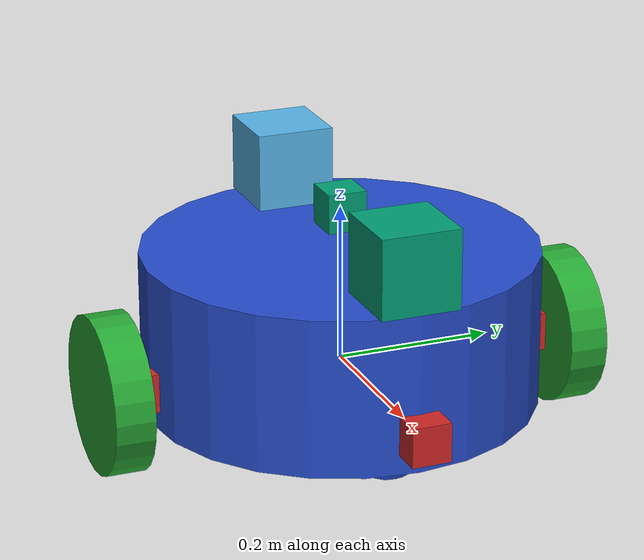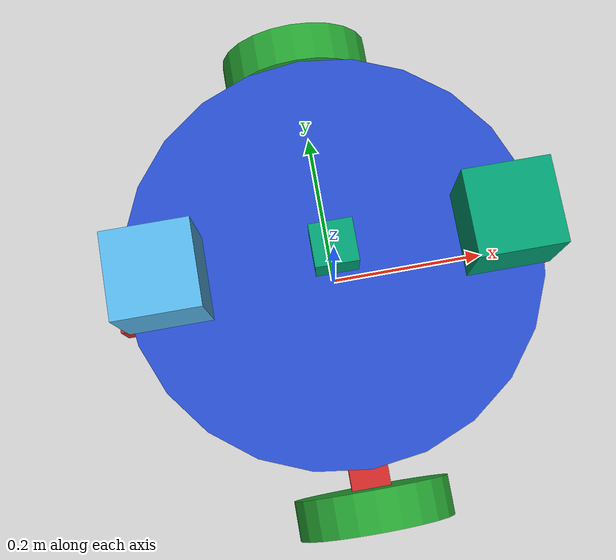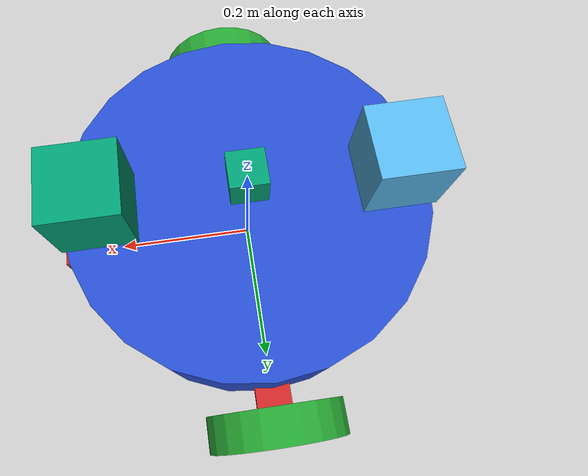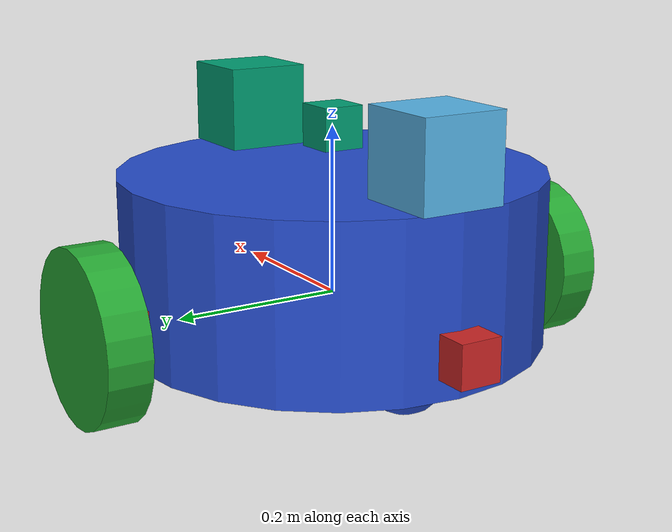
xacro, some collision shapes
<?xml version='1.0'?>

<robot name="trixy" xmlns:xacro="http://www.ros.org/wiki/xacro">

  <xacro:include filename="$(find trixy)/urdf/trixy.gazebo" />

  <gazebo reference="left_wheel">
    <material>Gazebo/Green</material>
  </gazebo>

  <gazebo reference="right_wheel">
    <material>Gazebo/Green</material>
  </gazebo>

  <gazebo reference="camera">
    <material>Gazebo/Red</material>
  </gazebo>

  <gazebo reference="camera_1">
    <material>Gazebo/Red</material>
  </gazebo>

  <gazebo reference="camera_2">
    <material>Gazebo/Red</material>
  </gazebo>

  <gazebo reference="camera_3">
    <material>Gazebo/Red</material>
  </gazebo>

  <gazebo reference="chassis">
    <material>Gazebo/Blue</material>
  </gazebo>
  <link name="robot_footprint"></link>

  <joint name="robot_footprint_joint" type="fixed">
    <origin xyz="0 0 0" rpy="0 0 0" />
    <parent link="robot_footprint"/>
    <child link="chassis" />
  </joint>

  <joint name="camera_joint" type="fixed">
    <origin xyz="0.26 0 0" rpy="0 0 0" />
    <parent link="chassis"/>
    <child link="camera" />
    <axis xyz="0 1 0"/>
  </joint>

  <joint name="hokuyo_joint" type="fixed">
    <origin xyz="0.2 0 0.2" rpy="0 0 0" />
    <parent link="chassis"/>
    <child link="hokuyo" />
    <axis xyz="0 1 0"/>
  </joint>

  <joint type="continuous" name="left_wheel_hinge">
    <origin xyz="0 0.30 0" rpy="0 0 0" />
    <parent link="chassis"/>
    <child link="left_wheel" />
    <axis xyz="0 1 0" rpy="0 0 0" />
    <limit effort="10000" velocity="1000" />
    <dynamics damping="1.0" friction="1.0" />
  </joint>

  <joint type="continuous" name="right_wheel_hinge">
    <origin xyz="0 -0.30 0" rpy="0 0 0" />
    <parent link="chassis"/>
    <child link="right_wheel" />
    <axis xyz="0 1 0" rpy="0 0 0" />
    <limit effort="10000" velocity="1000" />
    <dynamics damping="1.0" friction="1.0" />
  </joint>

  <link name="camera">
    <inertial>
      <mass value="0.1"/>
      <origin xyz="0 0 0" rpy="0 0 0"/>
      <inertia
        ixx="1e-6" ixy="0.0" ixz="0.0"
        iyy="1e-6" iyz="0.0"
        izz="1e-6"
      />
    </inertial>

    <collision>
      <origin xyz="0 0 0" rpy="0 0 0"/>
      <geometry>
        <box size="0.05 0.05 0.05"/>
      </geometry>
    </collision>

    <visual>
      <origin xyz="0 0 0" rpy="0 0 0"/>
      <geometry>
        <box size="0.05 0.05 0.05"/>
      </geometry>
    </visual>

  </link>

  <link name="hokuyo">
    <inertial>
      <mass value="1e-5"/>
      <origin xyz="0 0 0" rpy="0 0 0"/>
      <inertia
        ixx="1e-6" ixy="0.0" ixz="0.0"
        iyy="1e-6" iyz="0.0"
        izz="1e-6"
      />
    </inertial>

    <collision>
      <origin xyz="0 0 0" rpy="0 0 0"/>
      <geometry>
        <box size="0.1 0.1 0.1"/>
      </geometry>
    </collision>

    <visual>
      <origin xyz="0 0 0" rpy="0 0 0"/>
      <geometry>
        <mesh filename="package://trixy/meshes/hokuyo.dae"/>
      </geometry>
    </visual>

  </link>

  <link name="left_wheel">
    <inertial>
      <mass value="5"/>
      <origin xyz="0 0 0" rpy="0 1.5707 1.5707"/>
      <inertia
        ixx="0.1" ixy="0.0" ixz="0.0"
        iyy="0.1" iyz="0.0"
        izz="0.1"
      />
    </inertial>

    <collision>
      <origin xyz="0 0 0" rpy="0 1.5707 1.5707"/>
      <geometry>
        <cylinder radius="0.1" length="0.05"/>
      </geometry>
    </collision>

    <visual>
      <origin xyz="0 0 0" rpy="0 1.5707 1.5707"/>
      <geometry>
        <cylinder radius="0.1" length="0.05"/>
      </geometry>
    </visual>

  </link>

  <link name="right_wheel">
    <inertial>
      <mass value="5"/>
      <origin xyz="0 0 0" rpy="0 1.5707 1.5707"/>
      <inertia
        ixx="0.1" ixy="0.0" ixz="0.0"
        iyy="0.1" iyz="0.0"
        izz="0.1"
      />
    </inertial>

    <collision>
      <origin xyz="0 0 0" rpy="0 1.5707 1.5707"/>
      <geometry>
        <cylinder radius="0.1" length="0.05"/>
      </geometry>
    </collision>

    <visual>
      <origin xyz="0 0 0" rpy="0 1.5707 1.5707"/>
      <geometry>
        <cylinder radius="0.1" length="0.05"/>
      </geometry>
    </visual>

  </link>

  <link name='chassis'>
    <pose>0 0 0.1 0 0 0</pose>

    <inertial>
      <mass value="15.0"/>
      <origin xyz="0.0 0 0" rpy=" 0 0 0"/>
      <inertia
          ixx="0.1" ixy="0" ixz="0"
          iyy="0.1" iyz="0"
          izz="0.1"
      />
    </inertial>

    <collision name='collision'>
      <origin xyz="0 0 0.05" rpy=" 0 0 0"/>
      <geometry>
        <cylinder length="0.2" radius="0.25"/>
      </geometry>
    </collision>

    <visual name='chassis_visual'>
      <origin xyz="0 0 0.05" rpy=" 0 0 0"/>
      <geometry>
       <cylinder length="0.2" radius="0.25"/>
      </geometry>
    </visual>

    <collision name='back_caster_collision'>
      <origin xyz="-0.15 0 -0.05" rpy=" 0 0 0"/>
      <geometry>
        <sphere radius="0.0499"/>
      </geometry>
    </collision>

    <visual name='back_caster_visual'>
      <origin xyz="-0.15 0 -0.05" rpy=" 0 0 0"/>
      <geometry>
        <sphere radius="0.05"/>
      </geometry>
    </visual>

    <collision name='front_caster_collision'>
      <origin xyz="0.15 0 -0.05" rpy=" 0 0 0"/>
      <geometry>
        <sphere radius="0.0499"/>
      </geometry>
    </collision>

    <visual name='front_caster_visual'>
      <origin xyz="0.15 0 -0.05" rpy=" 0 0 0"/>
      <geometry>
        <sphere radius="0.05"/>
      </geometry>
    </visual>

  </link>

  <link name="camera_1">
    <inertial>
      <mass value="0.1"/>
      <origin xyz="0 0 0" rpy="0 0 3.1414"/>
      <inertia
        ixx="1e-6" ixy="0.0" ixz="0.0"
        iyy="1e-6" iyz="0.0"
        izz="1e-6"
      />
    </inertial>

    <collision>
      <origin xyz="0 0 0" rpy="0 0 3.1414"/>
      <geometry>
        <box size="0.05 0.05 0.05"/>
      </geometry>
    </collision>

    <visual>
      <origin xyz="0 0 0" rpy="0 0 3.1414"/>
      <geometry>
        <box size="0.05 0.05 0.05"/>
      </geometry>
    </visual>

  </link>

  <joint name="camera_joint_1" type="fixed">
    <origin xyz="-0.26 0 0" rpy="0 0 3.1414" />
    <parent link="chassis"/>
    <child link="camera_1" />
    <axis xyz="0 1 0"/>
  </joint>

  <link name="camera_2">
    <inertial>
      <mass value="0.1"/>
      <origin xyz="0 0 0" rpy="0 0 -1.5707"/>
      <inertia
        ixx="1e-6" ixy="0.0" ixz="0.0"
        iyy="1e-6" iyz="0.0"
        izz="1e-6"
      />
    </inertial>

    <collision>
      <origin xyz="0 0 0" rpy="0 0 -1.5707"/>
      <geometry>
        <box size="0.05 0.05 0.05"/>
      </geometry>
    </collision>

    <visual>
      <origin xyz="0 0 0" rpy="0 0 -1.5707"/>
      <geometry>
        <box size="0.05 0.05 0.05"/>
      </geometry>
    </visual>

  </link>

  <joint name="camera_joint_2" type="fixed">
    <origin xyz="0 0.26 0" rpy="0 0 -1.5707" />
    <parent link="chassis"/>
    <child link="camera_2" />
    <axis xyz="0 1 0"/>
  </joint>

  <link name="camera_3">
    <inertial>
      <mass value="0.1"/>
      <origin xyz="0 0 0" rpy="0 0 1.5707"/>
      <inertia
        ixx="1e-6" ixy="0.0" ixz="0.0"
        iyy="1e-6" iyz="0.0"
        izz="1e-6"
      />
    </inertial>

    <collision>
      <origin xyz="0 0 0" rpy="0 0 1.5707"/>
      <geometry>
        <box size="0.05 0.05 0.05"/>
      </geometry>
    </collision>

    <visual>
      <origin xyz="0 0 0" rpy="0 0 1.5707"/>
      <geometry>
        <box size="0.05 0.05 0.05"/>
      </geometry>
    </visual>

  </link>

  <joint name="camera_joint_3" type="fixed">
    <origin xyz="0 -0.26 0" rpy="0 0 1.5707" />
    <parent link="chassis"/>
    <child link="camera_3" />
    <axis xyz="0 1 0"/>
  </joint>

  <link name="hokuyo_1">
    <inertial>
      <mass value="1e-5"/>
      <origin xyz="0 0 0" rpy="0 0 3.1414"/>
      <inertia
        ixx="1e-6" ixy="0.0" ixz="0.0"
        iyy="1e-6" iyz="0.0"
        izz="1e-6"
      />
    </inertial>

    <collision>
      <origin xyz="0 0 0" rpy="0 0 3.1414"/>
      <geometry>
        <box size="0.1 0.1 0.1"/>
      </geometry>
    </collision>

    <visual>
      <origin xyz="0 0 0" rpy="0 0 3.1414"/>
      <geometry>
        <mesh filename="package://trixy/meshes/hokuyo.dae"/>
      </geometry>
    </visual>

  </link>

  <joint name="hokuyo_joint_1" type="fixed">
    <origin xyz="-0.2 0 0.2" rpy="0 0 3.1414" />
    <parent link="chassis"/>
    <child link="hokuyo_1" />
    <axis xyz="0 1 0"/>
  </joint>

  <link name="imu">
    <inertial>
      <mass value="1e-5"/>
      <origin xyz="0 0 0" rpy="0 0 0"/>
      <inertia
        ixx="1e-6" ixy="0.0" ixz="0.0"
        iyy="1e-6" iyz="0.0"
        izz="1e-6"
      />
    </inertial>

    <collision>
      <origin xyz="0 0 0" rpy="0 0 0"/>
      <geometry>
        <box size="0.05 0.05 0.05"/>
      </geometry>
    </collision>

    <visual>
      <origin xyz="0 0 0" rpy="0 0 0"/>
      <geometry>
        <box size="0.05 0.05 0.05"/>
      </geometry>
    </visual>

  </link>

  <joint name="imu_joint" type="fixed">
    <origin xyz="0 0 0.2" rpy="0 0 0" />
    <parent link="chassis"/>
    <child link="imu" />
    <axis xyz="0 1 0"/>
  </joint>

</robot>
